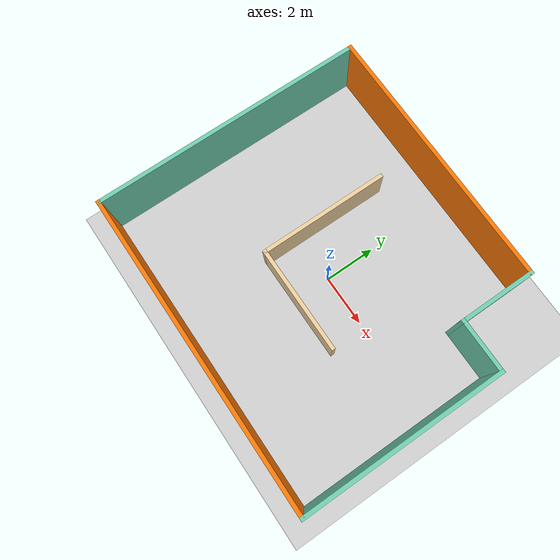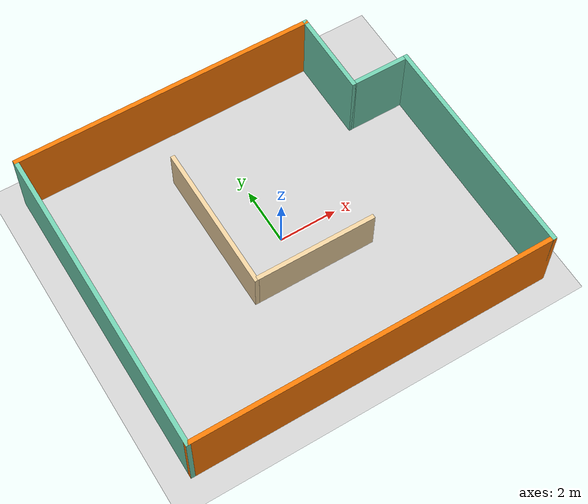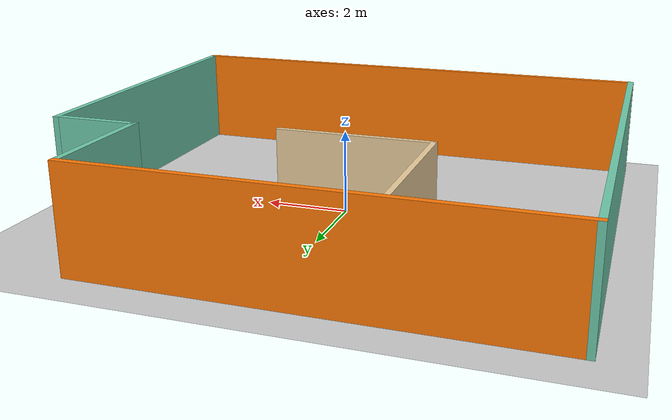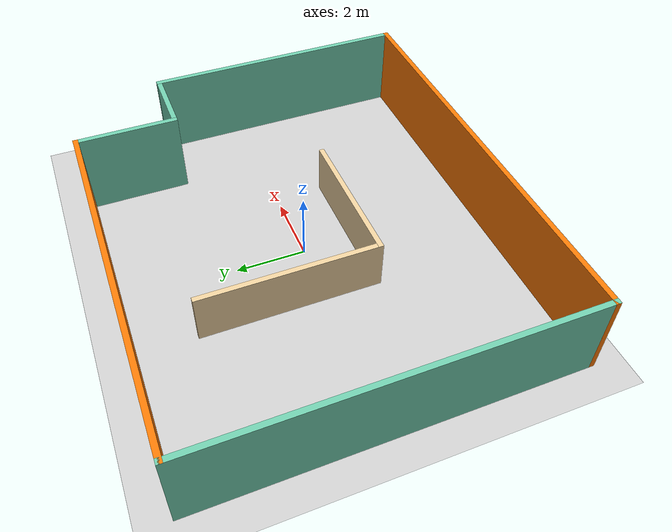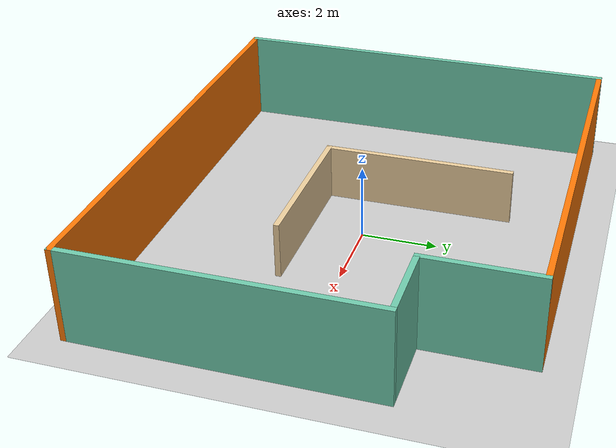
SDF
<sdf version="1.6">
 <world name="default">
  <light name="sun" type="directional">
   <pose>0 0 10 0 -0 0</pose>
   <diffuse>0.8 0.8 0.8 1</diffuse>
   <specular>0.2 0.2 0.2 1</specular>
   <attenuation>
    <range>1000</range>
    <constant>0.9</constant>
    <linear>0.01</linear>
    <quadratic>0.001</quadratic>
   </attenuation>
   <direction>-0.5 0.1 -0.9</direction>
  </light>
  <model name="ground_plane">
   <static>1</static>
   <link name="link">
    <collision name="collision">
     <geometry><plane><normal>0 0 1</normal><size>100 100</size></plane></geometry>
     <surface><friction><ode><mu>100</mu><mu2>50</mu2></ode></friction></surface>
    </collision>
    <visual name="visual">
     <cast_shadows>0</cast_shadows>
     <geometry><plane><normal>0 0 1</normal><size>100 100</size></plane></geometry>
     <material>
      <script><uri>file://media/materials/scripts/gazebo.material</uri><name>Gazebo/Grey</name></script>
     </material>
    </visual>
   </link>
  </model>
  <gravity>0 0 -9.8</gravity>
  <magnetic_field>6e-06 2.3e-05 -4.2e-05</magnetic_field>
  <atmosphere type="adiabatic"/>
  <physics name="default_physics" default="0" type="ode">
   <max_step_size>0.001</max_step_size>
   <real_time_factor>1</real_time_factor>
   <real_time_update_rate>1000</real_time_update_rate>
  </physics>
  <scene><ambient>0.4 0.4 0.4 1</ambient><background>0.7 0.7 0.7 1</background><shadows>1</shadows></scene>
  <spherical_coordinates>
   <surface_model>EARTH_WGS84</surface_model>
   <latitude_deg>0</latitude_deg>
   <longitude_deg>0</longitude_deg>
   <elevation>0</elevation>
   <heading_deg>0</heading_deg>
  </spherical_coordinates>
  <model name="HSRSpace">
   <pose>-0.040582 -0.003638 0 0 -0 0</pose>
   <link name="Wall_0">
    <collision name="Wall_0_Collision">
     <geometry><box><size>12.5 0.15 2.5</size></box></geometry>
     <pose>0 0 1.25 0 -0 0</pose>
    </collision>
    <visual name="Wall_0_Visual">
     <pose>0 0 1.25 0 -0 0</pose>
     <geometry><box><size>12.5 0.15 2.5</size></box></geometry>
     <material>
      <script><uri>file://media/materials/scripts/gazebo.material</uri><name>Gazebo/Grey</name></script>
      <ambient>0.996078 0.47451 0.0196078 1</ambient>
     </material>
     <meta><layer>0</layer></meta>
    </visual>
    <pose>0.000106 -5.2999 0 0 -0 3.14156</pose>
   </link>
   <link name="Wall_14">
    <collision name="Wall_14_Collision">
     <geometry><box><size>3 0.15 2.5</size></box></geometry>
     <pose>0 0 1.25 0 -0 0</pose>
    </collision>
    <visual name="Wall_14_Visual">
     <pose>0 0 1.25 0 -0 0</pose>
     <geometry><box><size>3 0.15 2.5</size></box></geometry>
     <material>
      <script><uri>file://media/materials/scripts/gazebo.material</uri><name>Gazebo/Grey</name></script>
      <ambient>0.435294 0.796078 0.67451 1</ambient>
     </material>
     <meta><layer>0</layer></meta>
    </visual>
    <pose>4.1749 3.8749 0 0 0 -1.5708</pose>
   </link>
   <link name="Wall_15">
    <collision name="Wall_15_Collision">
     <geometry><box><size>2 0.15 2.5</size></box></geometry>
     <pose>0 0 1.25 0 -0 0</pose>
    </collision>
    <visual name="Wall_15_Visual">
     <pose>0 0 1.25 0 -0 0</pose>
     <geometry><box><size>2 0.15 2.5</size></box></geometry>
     <material>
      <script><uri>file://media/materials/scripts/gazebo.material</uri><name>Gazebo/Grey</name></script>
      <ambient>0.435294 0.796078 0.67451 1</ambient>
     </material>
     <meta><layer>0</layer></meta>
    </visual>
    <pose>5.0999 2.4499 0 0 -0 0</pose>
   </link>
   <link name="Wall_21">
    <collision name="Wall_21_Collision">
     <geometry><box><size>7.9 0.15 2.5</size></box></geometry>
     <pose>0 0 1.25 0 -0 0</pose>
    </collision>
    <visual name="Wall_21_Visual">
     <pose>0 0 1.25 0 -0 0</pose>
     <geometry><box><size>7.9 0.15 2.5</size></box></geometry>
     <material>
      <script><uri>file://media/materials/scripts/gazebo.material</uri><name>Gazebo/Grey</name></script>
      <ambient>0.435294 0.796078 0.67451 1</ambient>
     </material>
     <meta><layer>0</layer></meta>
    </visual>
    <pose>6.1749 -1.4251 0 0 -0 1.5708</pose>
   </link>
   <link name="Wall_24">
    <collision name="Wall_24_Collision">
     <geometry><box><size>5.16806 0.15 1.5</size></box></geometry>
     <pose>0 0 0.75 0 -0 0</pose>
    </collision>
    <visual name="Wall_24_Visual">
     <pose>0 0 0.75 0 -0 0</pose>
     <geometry><box><size>5.16806 0.15 1.5</size></box></geometry>
     <material>
      <script><uri>file://media/materials/scripts/gazebo.material</uri><name>Gazebo/Grey</name></script>
      <ambient>0.921569 0.807843 0.615686 1</ambient>
     </material>
     <meta><layer>0</layer></meta>
    </visual>
    <pose>-1.7521 1.0319 0 0 0 -1.5708</pose>
   </link>
   <link name="Wall_25">
    <collision name="Wall_25_Collision">
     <geometry><box><size>4.27287 0.15 1.5</size></box></geometry>
     <pose>0 0 0.75 0 -0 0</pose>
    </collision>
    <visual name="Wall_25_Visual">
     <pose>0 0 0.75 0 -0 0</pose>
     <geometry><box><size>4.27287 0.15 1.5</size></box></geometry>
     <material>
      <script><uri>file://media/materials/scripts/gazebo.material</uri><name>Gazebo/Grey</name></script>
      <ambient>0.921569 0.807843 0.615686 1</ambient>
     </material>
     <meta><layer>0</layer></meta>
    </visual>
    <pose>0.309396 -1.4771 0 0 -0 0</pose>
   </link>
   <link name="Wall_6">
    <collision name="Wall_6_Collision">
     <geometry><box><size>10.75 0.15 2.5</size></box></geometry>
     <pose>0 0 1.25 0 -0 0</pose>
    </collision>
    <visual name="Wall_6_Visual">
     <pose>0 0 1.25 0 -0 0</pose>
     <geometry><box><size>10.75 0.15 2.5</size></box></geometry>
     <material>
      <script><uri>file://media/materials/scripts/gazebo.material</uri><name>Gazebo/Grey</name></script>
      <ambient>0.435294 0.796078 0.67451 1</ambient>
     </material>
     <meta><layer>0</layer></meta>
    </visual>
    <pose>-6.17489 0.000101 0 0 -0 1.57084</pose>
   </link>
   <link name="Wall_7">
    <collision name="Wall_7_Collision">
     <geometry><box><size>10.5 0.15 2.5</size></box></geometry>
     <pose>0 0 1.25 0 -0 0</pose>
    </collision>
    <visual name="Wall_7_Visual">
     <pose>0 0 1.25 0 -0 0</pose>
     <geometry><box><size>10.5 0.15 2.5</size></box></geometry>
     <material>
      <script><uri>file://media/materials/scripts/gazebo.material</uri><name>Gazebo/Grey</name></script>
      <ambient>0.996078 0.47451 0.0196078 1</ambient>
     </material>
     <meta><layer>0</layer></meta>
    </visual>
    <pose>-1.0001 5.2999 0 0 -0 0</pose>
   </link>
   <static>1</static>
  </model>
 </world>
</sdf>
